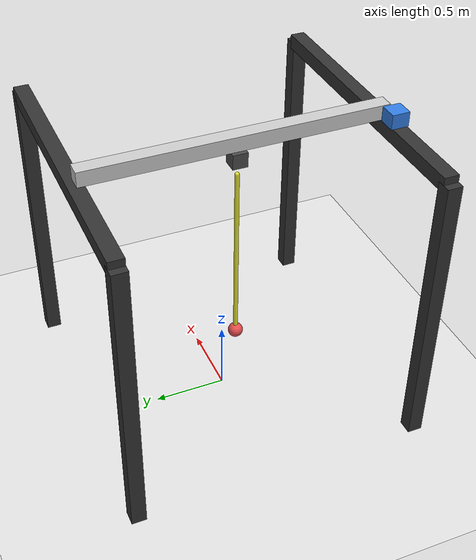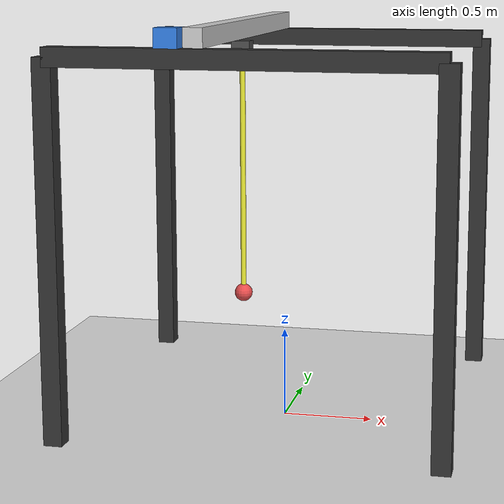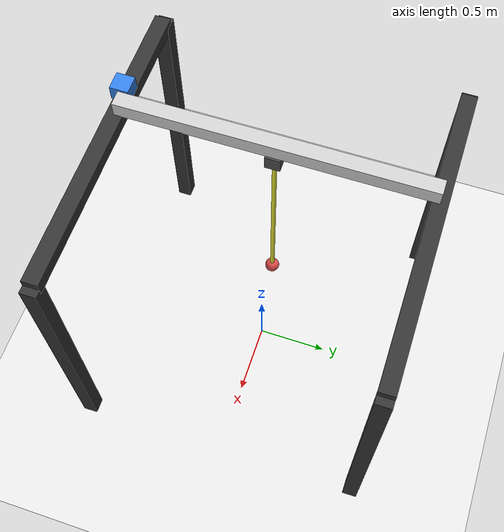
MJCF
<mujoco model="crane">
  <compiler angle="degree" coordinate="local" inertiafromgeom="false"/>

  <option gravity="0 0 -9.81" timestep="0.0002"/>

  <default>
    <geom density="0"
          contype="1" conaffinity="1"
          friction="0.8 0.1 0.1"/>
    <joint limited="true"
           armature="0.01"
           frictionloss="0.0"/>
  </default>

  <asset>
    <texture type="skybox" builtin="gradient"
             rgb1="0.4 0.5 0.8" rgb2="0.3 0.3 0.3"
             width="512" height="512"/>

    <texture name="tile_tex" type="2d"
             builtin="checker"
             rgb1="0.92 0.92 0.92" rgb2="0.86 0.86 0.86"
             mark="edge" markrgb="0.55 0.55 0.55"
             width="1024" height="1024"/>

    <material name="tile_mat" texture="tile_tex"
              texrepeat="8 8" texuniform="true"
              specular="0.4" shininess="0.8"
              reflectance="0.05"/>

    <material name="table_wood" rgba="1.0 0.753 0.549 1" specular="0.2" shininess="0.3"/>
    <material name="ceramic"    rgba="0.85 0.85 0.88 1"  specular="0.6" shininess="0.9"/>
  </asset>

  <contact>
    <!-- Common “don’t self-collide” exclusions for the pendulum under the bridge -->
    <exclude body1="bar"     body2="beam3"/>
    <exclude body1="payload" body2="beam3"/>
    <exclude body1="bar"     body2="cursor_1"/>
    <exclude body1="payload" body2="cursor_1"/>
  </contact>

  <worldbody>
    <!-- Floor (optional but useful) -->
    <geom name="floor" type="plane" pos="0 0 0" size="10 10 0.1"
          material="tile_mat" contype="1" conaffinity="1"/>

    <!-- Fixed portal structure -->
    <body name="chassis" pos="0 0 0.1">
      <inertial pos="0 0 0"
                mass="1.0"
                diaginertia="0.01 0.01 0.01"/>

      <!-- Legs -->
      <geom name="leg1_geom" type="box" size="0.05 0.05 1.0" pos="-1 -1 1" rgba="0.2 0.2 0.2 1"/>
      <geom name="leg2_geom" type="box" size="0.05 0.05 1.0" pos=" 1 -1 1" rgba="0.2 0.2 0.2 1"/>
      <geom name="leg3_geom" type="box" size="0.05 0.05 1.0" pos="-1  1 1" rgba="0.2 0.2 0.2 1"/>
      <geom name="leg4_geom" type="box" size="0.05 0.05 1.0" pos=" 1  1 1" rgba="0.2 0.2 0.2 1"/>

      <!-- Top beams -->
      <geom name="beam1_geom" type="box" size="1.0 0.05 0.05" pos="0 -1 2" rgba="0.2 0.2 0.2 1"/>
      <geom name="beam2_geom" type="box" size="1.0 0.05 0.05" pos="0  1 2" rgba="0.2 0.2 0.2 1"/>

      <!-- Motorized trolley (X-slide)  -->

      <body name="cursor_1" pos="-0.36 -1 2.1">
        <inertial pos="0 0 0"
                  mass="0.5"
                  diaginertia="0.000866667 0.000866667 0.0012"/>

        <!-- ONLY ACTUATED JOINT -->
        <joint name="joint_1" type="slide" axis="1 0 0" range="-0.53 1.2"/>

        <geom name="cursor_1_geom" type="box" size="0.06 0.06 0.05" rgba="0.2 0.5 0.9 1"/>

        <!-- Bridge beam rigidly attached to trolley; pendulum under it -->
        <body name="beam3" pos="0.12 0 0">
          <inertial pos="0 1 0"
                    mass="1.0"
                    diaginertia="0.334167 0.001667 0.334167"/>

          <geom name="beam3_geom" type="box"
                size="0.05 1.0 0.05"
                pos="0 1 0"
                rgba="0.8 0.8 0.8 1"/>

          <!-- Mount under the beam (rigid) -->
          <body name="hook_mount" pos="0 1 -0.12">
          <inertial pos="0 1 0"
                    mass="1.0"
                    diaginertia="0.334167 0.001667 0.334167"/>
            <geom name="carriage_geom" type="box"
                  size="0.05 0.05 0.05"
                  rgba="0.3 0.3 0.3 1"/>

            <!-- Passive pendulum (hinge J2)  -->

            <body name="bar" pos="0 0 -0.12">
              <!-- PASSIVE HINGE: no actuator attached -->
              <!-- axis="0 1 0" => swing in x-z plane (trolley moves along x) -->
              <joint name="joint_2" type="hinge"
                     axis="0 1 0"
                     range="-3600.14 3600.14"
                     damping="0.0"/>

              <!-- Bar as a capsule from hinge to end -->
              <geom name="bar_geom" type="capsule"
                    fromto="0 0 0  0 0 -1.253938735877984"
                    size="0.015"
                    rgba="0.9 0.9 0.2 1"/>

              <!-- Put the bar COM at mid-length -->
              <inertial pos="0 0 -0.626969367938992"
                        mass="0.2"
                        diaginertia="0.0005 0.0005 0.0001"/>

              <!-- Payload rigidly attached at the end of the bar -->
              <body name="payload" pos="0 0 -1.253938735877984">
                <inertial pos="0 0 0"
                          mass="10.0"
                          diaginertia="0.001 0.001 0.001"/>

                <geom name="payload_geom" type="sphere"
                      size="0.05"
                      rgba="0.9 0.3 0.3 1"/>
              </body>
            </body>
          </body>
        </body>
      </body>
    </body>
  </worldbody>

  <actuator>
    <motor name="motor_1" joint="joint_1"
           ctrllimited="true" ctrlrange="-300 300"
           forcelimited="true" forcerange="-300 300"
           gear="1"/>
  </actuator>
</mujoco>
